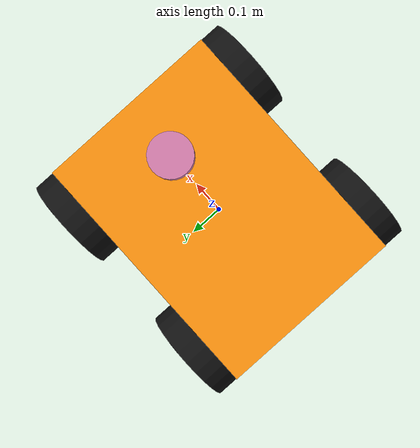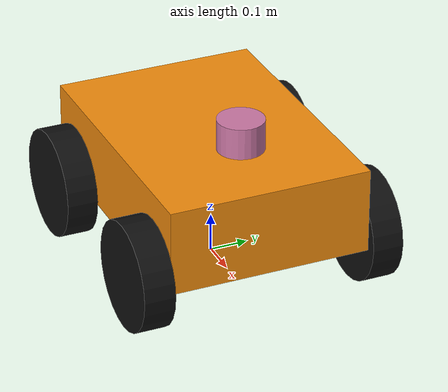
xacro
<?xml version="1.0"?>
<robot xmlns:xacro="http://www.ros.org/wiki/xacro" name="$(arg robot_name)">
  <xacro:arg name="robot_name" default="rover_0"/>
  <xacro:arg name="low_resource" default="true"/>
  <xacro:arg name="slam_mode" default="false"/>
  <xacro:property name="slam_mode" value="$(arg slam_mode)"/>
  <xacro:property name="lite" value="$(arg low_resource)"/>
  <xacro:property name="robot_name" value="$(arg robot_name)"/>
  <xacro:property name="wheel_radius" value="0.14"/>
  <xacro:property name="wheel_width" value="0.08"/>

  <link name="base_footprint"/>
  <joint name="base_joint" type="fixed">
    <parent link="base_footprint"/><child link="base_link"/>
    <origin xyz="0 0 0.24"/>
  </joint>
  <link name="base_link">
    <inertial><origin xyz="0 0 0"/><mass value="15.0"/><inertia ixx="0.40" ixy="0" ixz="0" iyy="0.65" iyz="0" izz="0.78"/></inertial>
    <visual><geometry><box size="0.72 0.52 0.22"/></geometry><material name="rescue_yellow"><color rgba="0.95 0.55 0.05 1"/></material></visual>
    <collision><geometry><box size="0.72 0.52 0.22"/></geometry></collision>
  </link>

  <xacro:macro name="wheel" params="name x y">
    <link name="${name}_wheel_link">
      <inertial><mass value="0.65"/><inertia ixx="0.00353" ixy="0" ixz="0" iyy="0.00637" iyz="0" izz="0.00353"/></inertial>
      <visual><origin rpy="1.5708 0 0"/><geometry><cylinder radius="${wheel_radius}" length="${wheel_width}"/></geometry><material name="tire"><color rgba="0.06 0.06 0.06 1"/></material></visual>
      <collision><origin rpy="1.5708 0 0"/><geometry><cylinder radius="${wheel_radius}" length="${wheel_width}"/></geometry></collision>
    </link>
    <joint name="${name}_wheel_joint" type="continuous">
      <parent link="base_link"/><child link="${name}_wheel_link"/>
      <origin xyz="${x} ${y} -0.10"/><axis xyz="0 1 0"/>
      <dynamics damping="0.05" friction="0.1"/>
    </joint>
    <gazebo reference="${name}_wheel_link"><mu1>0.9</mu1><mu2>0.15</mu2><fdir1>1 0 0</fdir1></gazebo>
  </xacro:macro>
  <xacro:wheel name="front_left" x="0.25" y="0.30"/>
  <xacro:wheel name="rear_left" x="-0.25" y="0.30"/>
  <xacro:wheel name="front_right" x="0.25" y="-0.30"/>
  <xacro:wheel name="rear_right" x="-0.25" y="-0.30"/>

  <link name="lidar_link">
    <inertial><mass value="0.12"/><inertia ixx="0.001" ixy="0" ixz="0" iyy="0.001" iyz="0" izz="0.001"/></inertial>
    <visual><geometry><cylinder radius="0.06" length="0.08"/></geometry></visual>
    <collision><geometry><cylinder radius="0.06" length="0.08"/></geometry></collision>
  </link>
  <joint name="lidar_joint" type="fixed"><parent link="base_link"/><child link="lidar_link"/><origin xyz="0.18 0 0.18"/></joint>

  <gazebo reference="lidar_link">
    <sensor name="lidar" type="gpu_lidar">
      <frame_id>${robot_name}/lidar_link</frame_id>
      <topic>/${robot_name}/scan</topic><update_rate>${5 if lite else 10}</update_rate><always_on>true</always_on><visualize>false</visualize>
      <lidar><scan><horizontal><samples>${180 if lite else 720}</samples><resolution>1</resolution><min_angle>-3.14159</min_angle><max_angle>3.14159</max_angle></horizontal></scan><range><min>0.12</min><max>12.0</max><resolution>0.02</resolution></range></lidar>
    </sensor>
    <sensor name="imu" type="imu"><frame_id>${robot_name}/lidar_link</frame_id><topic>/${robot_name}/imu/data</topic><update_rate>50</update_rate><always_on>true</always_on></sensor>
  </gazebo>
  <gazebo>
    <plugin filename="gz-sim-diff-drive-system" name="gz::sim::systems::DiffDrive">
      <left_joint>front_left_wheel_joint</left_joint><left_joint>rear_left_wheel_joint</left_joint>
      <right_joint>front_right_wheel_joint</right_joint><right_joint>rear_right_wheel_joint</right_joint>
      <wheel_separation>0.60</wheel_separation><wheel_radius>${wheel_radius}</wheel_radius>
      <max_linear_velocity>0.8</max_linear_velocity><min_linear_velocity>-0.4</min_linear_velocity>
      <max_angular_velocity>0.7</max_angular_velocity><min_angular_velocity>-0.7</min_angular_velocity>
      <max_linear_acceleration>0.4</max_linear_acceleration><min_linear_acceleration>-0.6</min_linear_acceleration>
      <max_angular_acceleration>0.6</max_angular_acceleration><min_angular_acceleration>-0.6</min_angular_acceleration>
      <topic>/${robot_name}/cmd_vel</topic><odom_topic>/${robot_name}/wheel_odom</odom_topic><tf_topic>/${robot_name}/wheel_tf</tf_topic>
      <frame_id>${robot_name}/odom</frame_id><child_frame_id>${robot_name}/base_footprint</child_frame_id><odom_publish_frequency>30</odom_publish_frequency>
    </plugin>
    <!-- World pose closes the simulation path loop without skid-steer odometry drift. -->
    <plugin filename="gz-sim-odometry-publisher-system" name="gz::sim::systems::OdometryPublisher">
      <odom_topic>/${robot_name}/odom</odom_topic><tf_topic>/${robot_name}/tf</tf_topic>
      <odom_frame>${'map' if slam_mode else robot_name+'/odom'}</odom_frame><robot_base_frame>${robot_name+'/ground_truth_base' if slam_mode else robot_name+'/base_footprint'}</robot_base_frame>
      <dimensions>3</dimensions><odom_publish_frequency>30</odom_publish_frequency>
    </plugin>
    <plugin filename="gz-sim-joint-state-publisher-system" name="gz::sim::systems::JointStatePublisher"><topic>/${robot_name}/joint_states</topic><update_rate>20</update_rate></plugin>
  </gazebo>
</robot>
